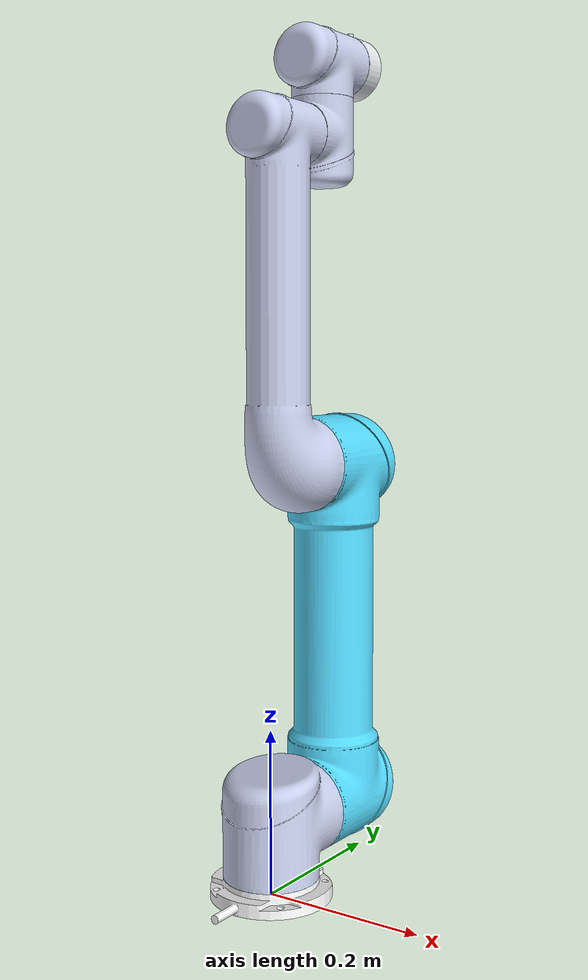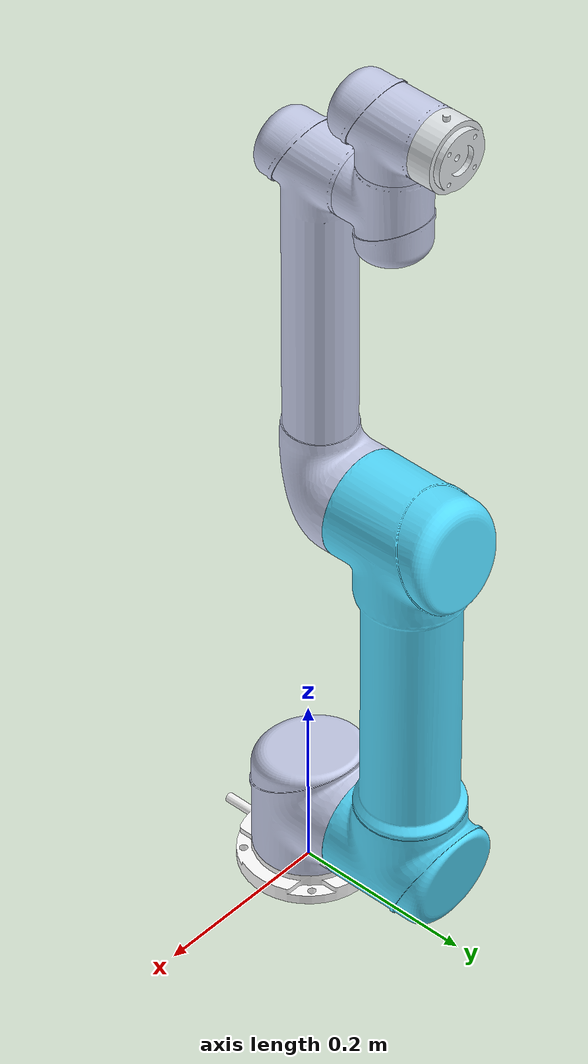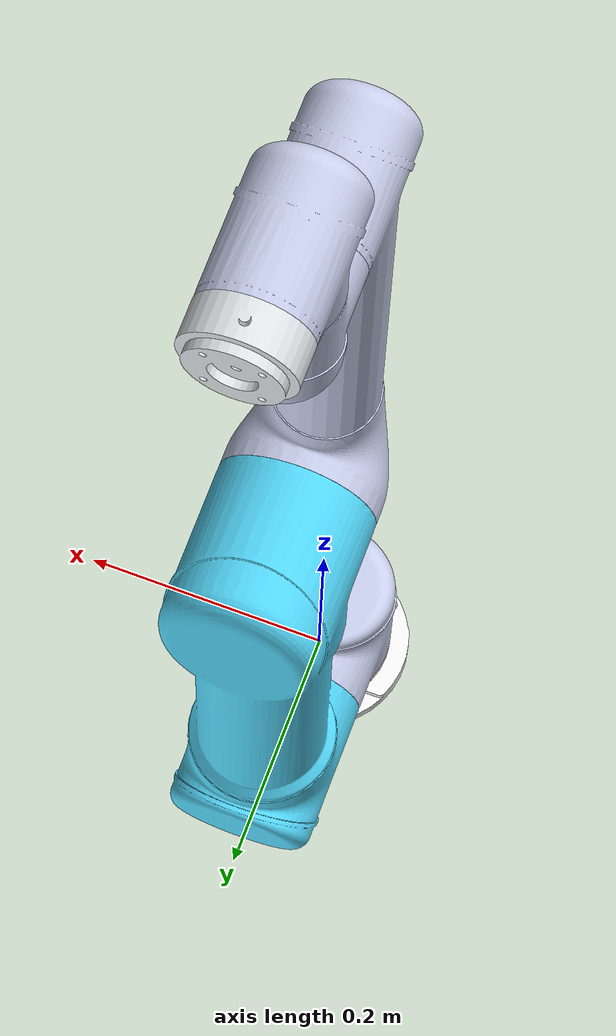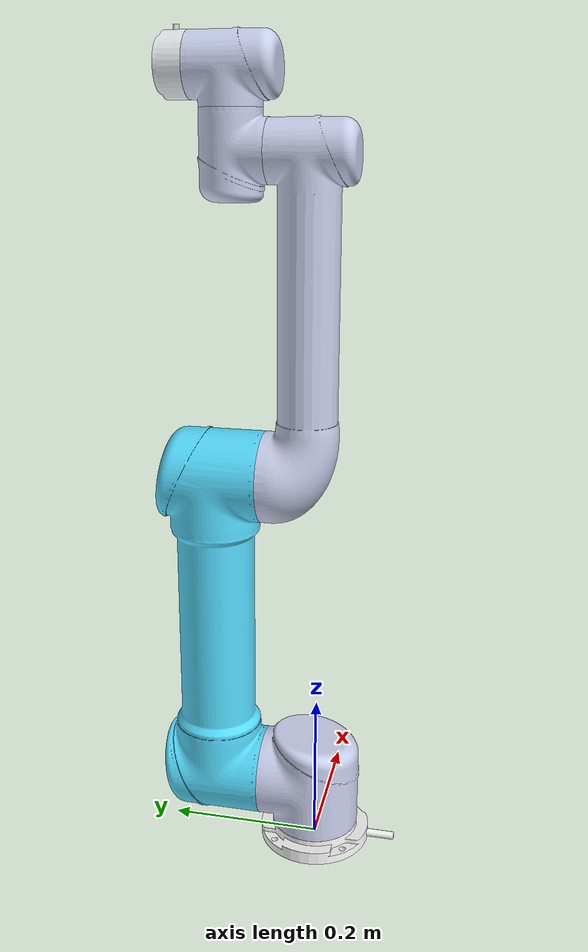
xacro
<?xml version="1.0" encoding="utf-8"?>
<robot name="ur5" xmlns:xacro="http://ros.org/wiki/xacro">
  <link
    name="base_link">
    <inertial>
      <origin
        xyz="2.2379E-05 -0.00077074 0.010876"
        rpy="0 0 0" />
      <mass value="0.00001" />
      <inertia ixx="10" ixy="0.0" ixz="0.0" iyy="10" iyz="0.0" izz="10" />
    </inertial>
    <visual>
      <origin
        xyz="0 0 0"
        rpy="0 0 0" />
      <geometry>
        <mesh
          filename="package://ur5_description/meshes/base_link.STL" />
      </geometry>
      <material
        name="">
        <color
          rgba="1 1 1 1" />
      </material>
    </visual>
    <collision>
      <origin
        xyz="0 0 0"
        rpy="0 0 0" />
      <geometry>
        <mesh
          filename="package://ur5_description/meshes/base_link.STL" />
      </geometry>
    </collision>
  </link>
  <link
    name="link_1">
    <inertial>
      <origin
        xyz="1.8316E-06 0.063328 -0.0092426"
        rpy="0 0 0" />
      <mass value="0.00001" />
      <inertia ixx="10" ixy="0.0" ixz="0.0" iyy="10" iyz="0.0" izz="10" />
    </inertial>
    <visual>
      <origin
        xyz="0 0 0"
        rpy="0 0 0" />
      <geometry>
        <mesh
          filename="package://ur5_description/meshes/link_1.STL" />
      </geometry>
      <material
        name="">
        <color
          rgba="0.79216 0.81961 0.93333 1" />
      </material>
    </visual>
    <collision>
      <origin
        xyz="0 0 0"
        rpy="0 0 0" />
      <geometry>
        <mesh
          filename="package://ur5_description/meshes/link_1.STL" />
      </geometry>
    </collision>
  </link>
  <joint
    name="joint_1"
    type="revolute">
    <origin
      xyz="0 0 0.024"
      rpy="1.5708 0 0" />
    <parent
      link="base_link" />
    <child
      link="link_1" />
    <axis
      xyz="0 -1 0" />
    <limit
      lower="-3.14"
      upper="3.14"
      effort="150"
      velocity="3.14" />
  </joint>
  <link
    name="link_2">
    <inertial>
      <origin
        xyz="-6.9975481714835E-09 0.212500774803063 -0.0641198851376631"
        rpy="0 0 0" />
      <mass value="0.00001" />
      <inertia ixx="10" ixy="0.0" ixz="0.0" iyy="10" iyz="0.0" izz="10" />
    </inertial>
    <visual>
      <origin
        xyz="0 0 0"
        rpy="0 0 0" />
      <geometry>
        <mesh
          filename="package://ur5_description/meshes/link_2.STL" />
      </geometry>
      <material
        name="">
        <color
          rgba="0.333333333333333 0.862745098039216 1 1" />
      </material>
    </visual>
    <collision>
      <origin
        xyz="0 0 0"
        rpy="0 0 0" />
      <geometry>
        <mesh
          filename="package://ur5_description/meshes/link_2.STL" />
      </geometry>
    </collision>
  </link>
  <joint
    name="joint_2"
    type="revolute">
    <origin
      xyz="0 0.0652 -0.0705"
      rpy="0 0 0" />
    <parent
      link="link_1" />
    <child
      link="link_2" />
    <axis
      xyz="0 0 1" />
    <limit
      lower="-3.14"
      upper="3.14"
      effort="150"
      velocity="3.14" />
  </joint>
  <link
    name="link_3">
    <inertial>
      <origin
        xyz="4.48591355879564E-08 0.184385161816603 0.0500891493611347"
        rpy="0 0 0" />
      <mass value="0.00001" />
      <inertia ixx="10" ixy="0.0" ixz="0.0" iyy="10" iyz="0.0" izz="10" />
    </inertial>
    <visual>
      <origin
        xyz="0 0 0"
        rpy="0 0 0" />
      <geometry>
        <mesh
          filename="package://ur5_description/meshes/link_3.STL" />
      </geometry>
      <material
        name="">
        <color
          rgba="0.792156862745098 0.819607843137255 0.933333333333333 1" />
      </material>
    </visual>
    <collision>
      <origin
        xyz="0 0 0"
        rpy="0 0 0" />
      <geometry>
        <mesh
          filename="package://ur5_description/meshes/link_3.STL" />
      </geometry>
    </collision>
  </link>
  <joint
    name="joint_3"
    type="revolute">
    <origin
      xyz="0 0.425 0"
      rpy="0 0 0" />
    <parent
      link="link_2" />
    <child
      link="link_3" />
    <axis
      xyz="0 0 1" />
    <limit
      lower="-3.14"
      upper="3.14"
      effort="150"
      velocity="3.14" />
  </joint>
  <link
    name="link_4">
    <inertial>
      <origin
        xyz="0.000267439864317399 -0.00317622153547115 -0.0410560934864477"
        rpy="0 0 0" />
      <mass value="0.00001" />
      <inertia ixx="10" ixy="0.0" ixz="0.0" iyy="10" iyz="0.0" izz="10" />
    </inertial>
    <visual>
      <origin
        xyz="0 0 0"
        rpy="0 0 0" />
      <geometry>
        <mesh
          filename="package://ur5_description/meshes/link_4.STL" />
      </geometry>
      <material
        name="">
        <color
          rgba="0.792156862745098 0.819607843137255 0.933333333333333 1" />
      </material>
    </visual>
    <collision>
      <origin
        xyz="0 0 0"
        rpy="0 0 0" />
      <geometry>
        <mesh
          filename="package://ur5_description/meshes/link_4.STL" />
      </geometry>
    </collision>
  </link>
  <joint
    name="joint_4"
    type="revolute">
    <origin
      xyz="0 0.39243 0.007"
      rpy="0 0 0" />
    <parent
      link="link_3" />
    <child
      link="link_4" />
    <axis
      xyz="0 0 -1" />
    <limit
      lower="-3.14"
      upper="3.14"
      effort="150"
      velocity="3.14" />
  </joint>
  <link
    name="link_5">
    <inertial>
      <origin
        xyz="7.83854854126579E-05 0.041077285875557 0.00362613301231042"
        rpy="0 0 0" />
      <mass value="0.00001" />
      <inertia ixx="10" ixy="0.0" ixz="0.0" iyy="10" iyz="0.0" izz="10" />
    </inertial>
    <visual>
      <origin
        xyz="0 0 0"
        rpy="0 0 0" />
      <geometry>
        <mesh
          filename="package://ur5_description/meshes/link_5.STL" />
      </geometry>
      <material
        name="">
        <color
          rgba="0.792156862745098 0.819607843137255 0.933333333333333 1" />
      </material>
    </visual>
    <collision>
      <origin
        xyz="0 0 0"
        rpy="0 0 0" />
      <geometry>
        <mesh
          filename="package://ur5_description/meshes/link_5.STL" />
      </geometry>
    </collision>
  </link>
  <joint
    name="joint_5"
    type="revolute">
    <origin
      xyz="0.00026549 0.047898 -0.0455"
      rpy="0 0 0" />
    <parent
      link="link_4" />
    <child
      link="link_5" />
    <axis
      xyz="0 1 0" />
    <limit
      lower="-3.14"
      upper="3.14"
      effort="150"
      velocity="3.14" />
  </joint>
  <link
    name="link_6">
    <inertial>
      <origin
        xyz="1.259858710466E-09 6.22572740960337E-05 -0.0157714392324549"
        rpy="0 0 0" />
      <mass value="0.00001" />
      <inertia ixx="10" ixy="0.0" ixz="0.0" iyy="10" iyz="0.0" izz="10" />
    </inertial>
    <visual>
      <origin
        xyz="0 0 0"
        rpy="0 0 0" />
      <geometry>
        <mesh
          filename="package://ur5_description/meshes/link_6.STL" />
      </geometry>
      <material
        name="">
        <color
          rgba="0.898039215686275 0.917647058823529 0.929411764705882 1" />
      </material>
    </visual>
    <collision>
      <origin
        xyz="0 0 0"
        rpy="0 0 0" />
      <geometry>
        <mesh
          filename="package://ur5_description/meshes/link_6.STL" />
      </geometry>
    </collision>
  </link>
  <joint
    name="joint_6"
    type="revolute">
    <origin
      xyz="7.9254E-05 0.0455 -0.047451"
      rpy="0 0 0" />
    <parent
      link="link_5" />
    <child
      link="link_6" />
    <axis
      xyz="0 0 -1" />
    <limit
      lower="-3.14"
      upper="3.14"
      effort="150"
      velocity="3.14" />
  </joint>

  <!-- Transmissions for ROS Control -->
  <xacro:macro name="transmission_block" params="joint_name">
    <transmission name="tran1">
      <type>transmission_interface/SimpleTransmission</type>
      <joint name="${joint_name}">
        <hardwareInterface>hardware_interface/PositionJointInterface</hardwareInterface>
      </joint>
      <actuator name="motor1">
        <hardwareInterface>hardware_interface/PositionJointInterface</hardwareInterface>
        <mechanicalReduction>1</mechanicalReduction>
      </actuator>
    </transmission>
  </xacro:macro>

  <xacro:transmission_block joint_name="joint_1"/>
  <xacro:transmission_block joint_name="joint_2"/>
  <xacro:transmission_block joint_name="joint_3"/>
  <xacro:transmission_block joint_name="joint_4"/>
  <xacro:transmission_block joint_name="joint_5"/>
  <xacro:transmission_block joint_name="joint_6"/>

  <!-- ros_control plugin -->
  <gazebo>
    <plugin name="gazebo_ros_control" filename="libgazebo_ros_control.so">
      <robotNamespace>/ur5</robotNamespace>
      <robotSimType>gazebo_ros_control/DefaultRobotHWSim</robotSimType>
      <legacyModeNS>true</legacyModeNS>
    </plugin>
  </gazebo>
</robot>
